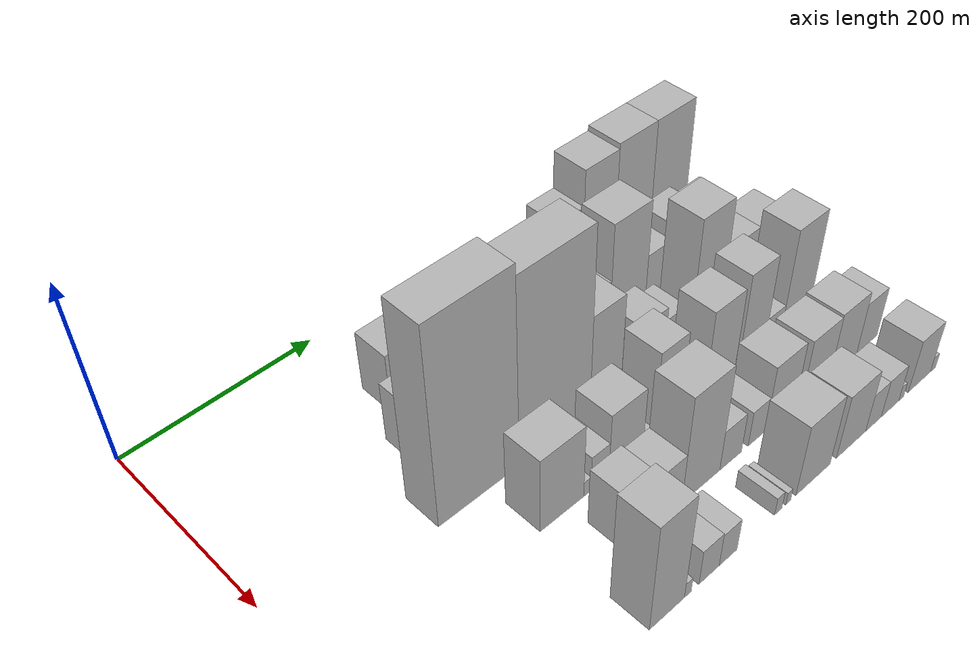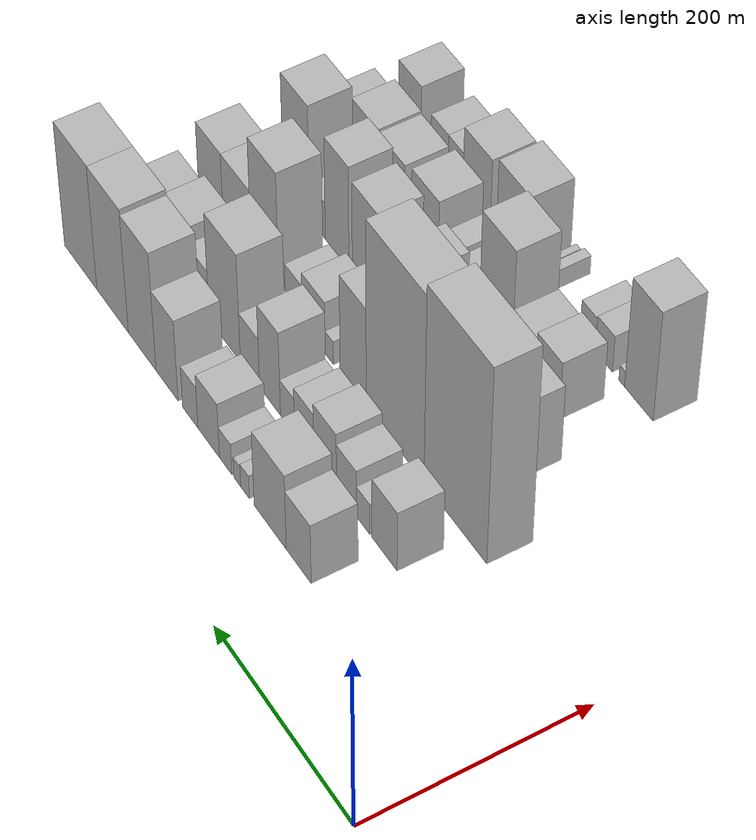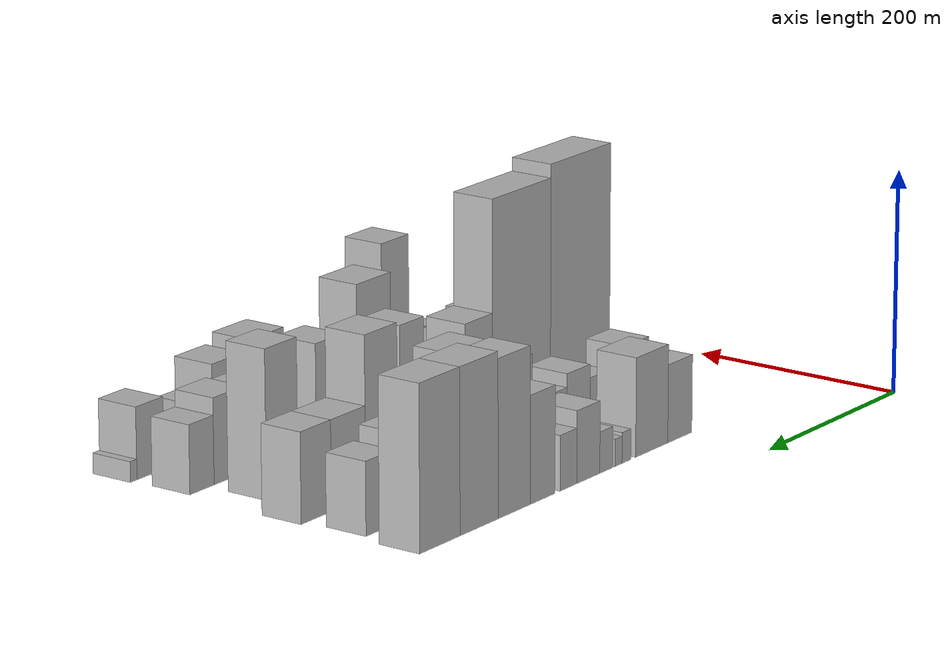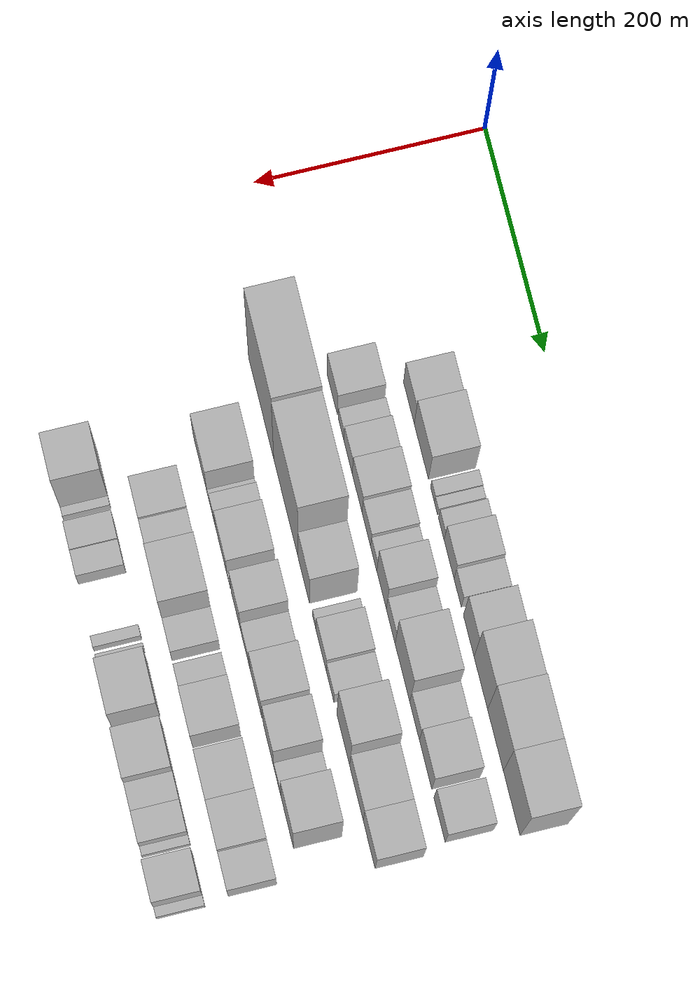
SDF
<sdf version="1.6">
 <world name="default">
  <model name="building_35">
   <static>1</static>
   <pose>100.0000 215.3011 0 0.000000 0.000000 0.000000</pose>
   <link name="link">
    <pose>0 0 34.50 0 0 0</pose>
    <collision name="collision"><geometry><box><size>40.0000 36.6681 69.0000</size></box></geometry></collision>
    <visual name="visual">
     <cast_shadows>0</cast_shadows>
     <geometry><box><size>40.0000 36.6681 69.0000</size></box></geometry>
     <material>
      <script>
       <uri>model://HANNAS_wall/materials/scripts</uri>
       <uri>model://HANNAS_wall/materials/textures</uri>
       <name>vrc/HANNAS_wall</name>
      </script>
     </material>
    </visual>
   </link>
  </model>
  <model name="building_36">
   <static>1</static>
   <pose>100.0000 257.6188 0 0.000000 0.000000 0.000000</pose>
   <link name="link">
    <pose>0 0 43.50 0 0 0</pose>
    <collision name="collision"><geometry><box><size>40.0000 47.9673 87.0000</size></box></geometry></collision>
    <visual name="visual">
     <cast_shadows>0</cast_shadows>
     <geometry><box><size>40.0000 47.9673 87.0000</size></box></geometry>
     <material>
      <script>
       <uri>model://HANNAS_wall/materials/scripts</uri>
       <uri>model://HANNAS_wall/materials/textures</uri>
       <name>vrc/HANNAS_wall</name>
      </script>
     </material>
    </visual>
   </link>
  </model>
  <model name="building_37">
   <static>1</static>
   <pose>100.0000 295.2699 0 0.000000 0.000000 0.000000</pose>
   <link name="link">
    <pose>0 0 13.50 0 0 0</pose>
    <collision name="collision"><geometry><box><size>40.0000 13.3350 27.0000</size></box></geometry></collision>
    <visual name="visual">
     <cast_shadows>0</cast_shadows>
     <geometry><box><size>40.0000 13.3350 27.0000</size></box></geometry>
     <material>
      <script>
       <uri>model://HANNAS_wall/materials/scripts</uri>
       <uri>model://HANNAS_wall/materials/textures</uri>
       <name>vrc/HANNAS_wall</name>
      </script>
     </material>
    </visual>
   </link>
  </model>
  <model name="building_38">
   <static>1</static>
   <pose>100.0000 307.1243 0 0.000000 0.000000 0.000000</pose>
   <link name="link">
    <pose>0 0 12.00 0 0 0</pose>
    <collision name="collision"><geometry><box><size>40.0000 10.3738 24.0000</size></box></geometry></collision>
    <visual name="visual">
     <cast_shadows>0</cast_shadows>
     <geometry><box><size>40.0000 10.3738 24.0000</size></box></geometry>
     <material>
      <script>
       <uri>model://HANNAS_wall/materials/scripts</uri>
       <uri>model://HANNAS_wall/materials/textures</uri>
       <name>vrc/HANNAS_wall</name>
      </script>
     </material>
    </visual>
   </link>
  </model>
  <model name="building_39">
   <static>1</static>
   <pose>100.0000 324.8237 0 0.000000 0.000000 0.000000</pose>
   <link name="link">
    <pose>0 0 18.00 0 0 0</pose>
    <collision name="collision"><geometry><box><size>40.0000 19.0250 36.0000</size></box></geometry></collision>
    <visual name="visual">
     <cast_shadows>0</cast_shadows>
     <geometry><box><size>40.0000 19.0250 36.0000</size></box></geometry>
     <material>
      <script>
       <uri>model://HANNAS_wall/materials/scripts</uri>
       <uri>model://HANNAS_wall/materials/textures</uri>
       <name>vrc/HANNAS_wall</name>
      </script>
     </material>
    </visual>
   </link>
  </model>
  <model name="building_40">
   <static>1</static>
   <pose>100.0000 350.9183 0 0.000000 0.000000 0.000000</pose>
   <link name="link">
    <pose>0 0 31.50 0 0 0</pose>
    <collision name="collision"><geometry><box><size>40.0000 33.1642 63.0000</size></box></geometry></collision>
    <visual name="visual">
     <cast_shadows>0</cast_shadows>
     <geometry><box><size>40.0000 33.1642 63.0000</size></box></geometry>
     <material>
      <script>
       <uri>model://HANNAS_wall/materials/scripts</uri>
       <uri>model://HANNAS_wall/materials/textures</uri>
       <name>vrc/HANNAS_wall</name>
      </script>
     </material>
    </visual>
   </link>
  </model>
  <model name="building_41">
   <static>1</static>
   <pose>100.0000 379.5309 0 0.000000 0.000000 0.000000</pose>
   <link name="link">
    <pose>0 0 24.00 0 0 0</pose>
    <collision name="collision"><geometry><box><size>40.0000 24.0609 48.0000</size></box></geometry></collision>
    <visual name="visual">
     <cast_shadows>0</cast_shadows>
     <geometry><box><size>40.0000 24.0609 48.0000</size></box></geometry>
     <material>
      <script>
       <uri>model://HANNAS_wall/materials/scripts</uri>
       <uri>model://HANNAS_wall/materials/textures</uri>
       <name>vrc/HANNAS_wall</name>
      </script>
     </material>
    </visual>
   </link>
  </model>
  <model name="building_42">
   <static>1</static>
   <pose>100.0000 416.1725 0 0.000000 0.000000 0.000000</pose>
   <link name="link">
    <pose>0 0 46.50 0 0 0</pose>
    <collision name="collision"><geometry><box><size>40.0000 35.2223 93.0000</size></box></geometry></collision>
    <visual name="visual">
     <cast_shadows>0</cast_shadows>
     <geometry><box><size>40.0000 35.2223 93.0000</size></box></geometry>
     <material>
      <script>
       <uri>model://HANNAS_wall/materials/scripts</uri>
       <uri>model://HANNAS_wall/materials/textures</uri>
       <name>vrc/HANNAS_wall</name>
      </script>
     </material>
    </visual>
   </link>
  </model>
  <model name="building_43">
   <static>1</static>
   <pose>100.0000 456.0497 0 0.000000 0.000000 0.000000</pose>
   <link name="link">
    <pose>0 0 67.50 0 0 0</pose>
    <collision name="collision"><geometry><box><size>40.0000 44.5321 135.0000</size></box></geometry></collision>
    <visual name="visual">
     <cast_shadows>0</cast_shadows>
     <geometry><box><size>40.0000 44.5321 135.0000</size></box></geometry>
     <material>
      <script>
       <uri>model://HANNAS_wall/materials/scripts</uri>
       <uri>model://HANNAS_wall/materials/textures</uri>
       <name>vrc/HANNAS_wall</name>
      </script>
     </material>
    </visual>
   </link>
  </model>
  <model name="building_44">
   <static>1</static>
   <pose>100.0000 504.1337 0 0.000000 0.000000 0.000000</pose>
   <link name="link">
    <pose>0 0 70.50 0 0 0</pose>
    <collision name="collision"><geometry><box><size>40.0000 51.6360 141.0000</size></box></geometry></collision>
    <visual name="visual">
     <cast_shadows>0</cast_shadows>
     <geometry><box><size>40.0000 51.6360 141.0000</size></box></geometry>
     <material>
      <script>
       <uri>model://HANNAS_wall/materials/scripts</uri>
       <uri>model://HANNAS_wall/materials/textures</uri>
       <name>vrc/HANNAS_wall</name>
      </script>
     </material>
    </visual>
   </link>
  </model>
  <model name="building_45">
   <static>1</static>
   <pose>100.0000 556.8525 0 0.000000 0.000000 0.000000</pose>
   <link name="link">
    <pose>0 0 70.50 0 0 0</pose>
    <collision name="collision"><geometry><box><size>40.0000 53.8015 141.0000</size></box></geometry></collision>
    <visual name="visual">
     <cast_shadows>0</cast_shadows>
     <geometry><box><size>40.0000 53.8015 141.0000</size></box></geometry>
     <material>
      <script>
       <uri>model://HANNAS_wall/materials/scripts</uri>
       <uri>model://HANNAS_wall/materials/textures</uri>
       <name>vrc/HANNAS_wall</name>
      </script>
     </material>
    </visual>
   </link>
  </model>
  <model name="building_87">
   <static>1</static>
   <pose>160.0000 192.6110 0 0.000000 0.000000 0.000000</pose>
   <link name="link">
    <pose>0 0 34.50 0 0 0</pose>
    <collision name="collision"><geometry><box><size>40.0000 36.2298 69.0000</size></box></geometry></collision>
    <visual name="visual">
     <cast_shadows>0</cast_shadows>
     <geometry><box><size>40.0000 36.2298 69.0000</size></box></geometry>
     <material>
      <script>
       <uri>model://HANNAS_wall/materials/scripts</uri>
       <uri>model://HANNAS_wall/materials/textures</uri>
       <name>vrc/HANNAS_wall</name>
      </script>
     </material>
    </visual>
   </link>
  </model>
  <model name="building_88">
   <static>1</static>
   <pose>160.0000 223.4874 0 0.000000 0.000000 0.000000</pose>
   <link name="link">
    <pose>0 0 18.00 0 0 0</pose>
    <collision name="collision"><geometry><box><size>40.0000 19.5230 36.0000</size></box></geometry></collision>
    <visual name="visual">
     <cast_shadows>0</cast_shadows>
     <geometry><box><size>40.0000 19.5230 36.0000</size></box></geometry>
     <material>
      <script>
       <uri>model://HANNAS_wall/materials/scripts</uri>
       <uri>model://HANNAS_wall/materials/textures</uri>
       <name>vrc/HANNAS_wall</name>
      </script>
     </material>
    </visual>
   </link>
  </model>
  <model name="building_89">
   <static>1</static>
   <pose>160.0000 247.8006 0 0.000000 0.000000 0.000000</pose>
   <link name="link">
    <pose>0 0 27.00 0 0 0</pose>
    <collision name="collision"><geometry><box><size>40.0000 29.1033 54.0000</size></box></geometry></collision>
    <visual name="visual">
     <cast_shadows>0</cast_shadows>
     <geometry><box><size>40.0000 29.1033 54.0000</size></box></geometry>
     <material>
      <script>
       <uri>model://HANNAS_wall/materials/scripts</uri>
       <uri>model://HANNAS_wall/materials/textures</uri>
       <name>vrc/HANNAS_wall</name>
      </script>
     </material>
    </visual>
   </link>
  </model>
  <model name="building_90">
   <static>1</static>
   <pose>160.0000 279.1996 0 0.000000 0.000000 0.000000</pose>
   <link name="link">
    <pose>0 0 33.00 0 0 0</pose>
    <collision name="collision"><geometry><box><size>40.0000 33.6947 66.0000</size></box></geometry></collision>
    <visual name="visual">
     <cast_shadows>0</cast_shadows>
     <geometry><box><size>40.0000 33.6947 66.0000</size></box></geometry>
     <material>
      <script>
       <uri>model://HANNAS_wall/materials/scripts</uri>
       <uri>model://HANNAS_wall/materials/textures</uri>
       <name>vrc/HANNAS_wall</name>
      </script>
     </material>
    </visual>
   </link>
  </model>
  <model name="building_91">
   <static>1</static>
   <pose>160.0000 310.6237 0 0.000000 0.000000 0.000000</pose>
   <link name="link">
    <pose>0 0 27.00 0 0 0</pose>
    <collision name="collision"><geometry><box><size>40.0000 29.1536 54.0000</size></box></geometry></collision>
    <visual name="visual">
     <cast_shadows>0</cast_shadows>
     <geometry><box><size>40.0000 29.1536 54.0000</size></box></geometry>
     <material>
      <script>
       <uri>model://HANNAS_wall/materials/scripts</uri>
       <uri>model://HANNAS_wall/materials/textures</uri>
       <name>vrc/HANNAS_wall</name>
      </script>
     </material>
    </visual>
   </link>
  </model>
  <model name="building_92">
   <static>1</static>
   <pose>160.0000 335.8627 0 0.000000 0.000000 0.000000</pose>
   <link name="link">
    <pose>0 0 21.00 0 0 0</pose>
    <collision name="collision"><geometry><box><size>40.0000 21.3245 42.0000</size></box></geometry></collision>
    <visual name="visual">
     <cast_shadows>0</cast_shadows>
     <geometry><box><size>40.0000 21.3245 42.0000</size></box></geometry>
     <material>
      <script>
       <uri>model://HANNAS_wall/materials/scripts</uri>
       <uri>model://HANNAS_wall/materials/textures</uri>
       <name>vrc/HANNAS_wall</name>
      </script>
     </material>
    </visual>
   </link>
  </model>
  <model name="building_93">
   <static>1</static>
   <pose>160.0000 362.5273 0 0.000000 0.000000 0.000000</pose>
   <link name="link">
    <pose>0 0 48.00 0 0 0</pose>
    <collision name="collision"><geometry><box><size>40.0000 32.0047 96.0000</size></box></geometry></collision>
    <visual name="visual">
     <cast_shadows>0</cast_shadows>
     <geometry><box><size>40.0000 32.0047 96.0000</size></box></geometry>
     <material>
      <script>
       <uri>model://HANNAS_wall/materials/scripts</uri>
       <uri>model://HANNAS_wall/materials/textures</uri>
       <name>vrc/HANNAS_wall</name>
      </script>
     </material>
    </visual>
   </link>
  </model>
  <model name="building_94">
   <static>1</static>
   <pose>160.0000 393.4113 0 0.000000 0.000000 0.000000</pose>
   <link name="link">
    <pose>0 0 28.50 0 0 0</pose>
    <collision name="collision"><geometry><box><size>40.0000 29.7634 57.0000</size></box></geometry></collision>
    <visual name="visual">
     <cast_shadows>0</cast_shadows>
     <geometry><box><size>40.0000 29.7634 57.0000</size></box></geometry>
     <material>
      <script>
       <uri>model://HANNAS_wall/materials/scripts</uri>
       <uri>model://HANNAS_wall/materials/textures</uri>
       <name>vrc/HANNAS_wall</name>
      </script>
     </material>
    </visual>
   </link>
  </model>
  <model name="building_95">
   <static>1</static>
   <pose>160.0000 432.8601 0 0.000000 0.000000 0.000000</pose>
   <link name="link">
    <pose>0 0 61.50 0 0 0</pose>
    <collision name="collision"><geometry><box><size>40.0000 49.1340 123.0000</size></box></geometry></collision>
    <visual name="visual">
     <cast_shadows>0</cast_shadows>
     <geometry><box><size>40.0000 49.1340 123.0000</size></box></geometry>
     <material>
      <script>
       <uri>model://HANNAS_wall/materials/scripts</uri>
       <uri>model://HANNAS_wall/materials/textures</uri>
       <name>vrc/HANNAS_wall</name>
      </script>
     </material>
    </visual>
   </link>
  </model>
  <model name="building_96">
   <static>1</static>
   <pose>160.0000 473.5806 0 0.000000 0.000000 0.000000</pose>
   <link name="link">
    <pose>0 0 28.50 0 0 0</pose>
    <collision name="collision"><geometry><box><size>40.0000 32.3071 57.0000</size></box></geometry></collision>
    <visual name="visual">
     <cast_shadows>0</cast_shadows>
     <geometry><box><size>40.0000 32.3071 57.0000</size></box></geometry>
     <material>
      <script>
       <uri>model://HANNAS_wall/materials/scripts</uri>
       <uri>model://HANNAS_wall/materials/textures</uri>
       <name>vrc/HANNAS_wall</name>
      </script>
     </material>
    </visual>
   </link>
  </model>
  <model name="building_97">
   <static>1</static>
   <pose>160.0000 510.1602 0 0.000000 0.000000 0.000000</pose>
   <link name="link">
    <pose>0 0 37.50 0 0 0</pose>
    <collision name="collision"><geometry><box><size>40.0000 40.8520 75.0000</size></box></geometry></collision>
    <visual name="visual">
     <cast_shadows>0</cast_shadows>
     <geometry><box><size>40.0000 40.8520 75.0000</size></box></geometry>
     <material>
      <script>
       <uri>model://HANNAS_wall/materials/scripts</uri>
       <uri>model://HANNAS_wall/materials/textures</uri>
       <name>vrc/HANNAS_wall</name>
      </script>
     </material>
    </visual>
   </link>
  </model>
  <model name="building_98">
   <static>1</static>
   <pose>160.0000 556.1377 0 0.000000 0.000000 0.000000</pose>
   <link name="link">
    <pose>0 0 31.50 0 0 0</pose>
    <collision name="collision"><geometry><box><size>40.0000 37.1031 63.0000</size></box></geometry></collision>
    <visual name="visual">
     <cast_shadows>0</cast_shadows>
     <geometry><box><size>40.0000 37.1031 63.0000</size></box></geometry>
     <material>
      <script>
       <uri>model://HANNAS_wall/materials/scripts</uri>
       <uri>model://HANNAS_wall/materials/textures</uri>
       <name>vrc/HANNAS_wall</name>
      </script>
     </material>
    </visual>
   </link>
  </model>
  <model name="building_144">
   <static>1</static>
   <pose>220.0000 190.7078 0 0.000000 0.000000 0.000000</pose>
   <link name="link">
    <pose>0 0 112.50 0 0 0</pose>
    <collision name="collision"><geometry><box><size>40.0000 89.0320 225.0000</size></box></geometry></collision>
    <visual name="visual">
     <cast_shadows>0</cast_shadows>
     <geometry><box><size>40.0000 89.0320 225.0000</size></box></geometry>
     <material>
      <script>
       <uri>model://HANNAS_wall/materials/scripts</uri>
       <uri>model://HANNAS_wall/materials/textures</uri>
       <name>vrc/HANNAS_wall</name>
      </script>
     </material>
    </visual>
   </link>
  </model>
  <model name="building_145">
   <static>1</static>
   <pose>220.0000 277.5758 0 0.000000 0.000000 0.000000</pose>
   <link name="link">
    <pose>0 0 106.50 0 0 0</pose>
    <collision name="collision"><geometry><box><size>40.0000 84.7039 213.0000</size></box></geometry></collision>
    <visual name="visual">
     <cast_shadows>0</cast_shadows>
     <geometry><box><size>40.0000 84.7039 213.0000</size></box></geometry>
     <material>
      <script>
       <uri>model://HANNAS_wall/materials/scripts</uri>
       <uri>model://HANNAS_wall/materials/textures</uri>
       <name>vrc/HANNAS_wall</name>
      </script>
     </material>
    </visual>
   </link>
  </model>
  <model name="building_146">
   <static>1</static>
   <pose>220.0000 339.4947 0 0.000000 0.000000 0.000000</pose>
   <link name="link">
    <pose>0 0 57.00 0 0 0</pose>
    <collision name="collision"><geometry><box><size>40.0000 39.1339 114.0000</size></box></geometry></collision>
    <visual name="visual">
     <cast_shadows>0</cast_shadows>
     <geometry><box><size>40.0000 39.1339 114.0000</size></box></geometry>
     <material>
      <script>
       <uri>model://HANNAS_wall/materials/scripts</uri>
       <uri>model://HANNAS_wall/materials/textures</uri>
       <name>vrc/HANNAS_wall</name>
      </script>
     </material>
    </visual>
   </link>
  </model>
  <model name="building_147">
   <static>1</static>
   <pose>220.0000 375.3607 0 0.000000 0.000000 0.000000</pose>
   <link name="link">
    <pose>0 0 13.50 0 0 0</pose>
    <collision name="collision"><geometry><box><size>40.0000 12.5982 27.0000</size></box></geometry></collision>
    <visual name="visual">
     <cast_shadows>0</cast_shadows>
     <geometry><box><size>40.0000 12.5982 27.0000</size></box></geometry>
     <material>
      <script>
       <uri>model://HANNAS_wall/materials/scripts</uri>
       <uri>model://HANNAS_wall/materials/textures</uri>
       <name>vrc/HANNAS_wall</name>
      </script>
     </material>
    </visual>
   </link>
  </model>
  <model name="building_148">
   <static>1</static>
   <pose>220.0000 399.1715 0 0.000000 0.000000 0.000000</pose>
   <link name="link">
    <pose>0 0 30.00 0 0 0</pose>
    <collision name="collision"><geometry><box><size>40.0000 35.0233 60.0000</size></box></geometry></collision>
    <visual name="visual">
     <cast_shadows>0</cast_shadows>
     <geometry><box><size>40.0000 35.0233 60.0000</size></box></geometry>
     <material>
      <script>
       <uri>model://HANNAS_wall/materials/scripts</uri>
       <uri>model://HANNAS_wall/materials/textures</uri>
       <name>vrc/HANNAS_wall</name>
      </script>
     </material>
    </visual>
   </link>
  </model>
  <model name="building_149">
   <static>1</static>
   <pose>220.0000 429.8828 0 0.000000 0.000000 0.000000</pose>
   <link name="link">
    <pose>0 0 22.50 0 0 0</pose>
    <collision name="collision"><geometry><box><size>40.0000 26.3994 45.0000</size></box></geometry></collision>
    <visual name="visual">
     <cast_shadows>0</cast_shadows>
     <geometry><box><size>40.0000 26.3994 45.0000</size></box></geometry>
     <material>
      <script>
       <uri>model://HANNAS_wall/materials/scripts</uri>
       <uri>model://HANNAS_wall/materials/textures</uri>
       <name>vrc/HANNAS_wall</name>
      </script>
     </material>
    </visual>
   </link>
  </model>
  <model name="building_150">
   <static>1</static>
   <pose>220.0000 474.7419 0 0.000000 0.000000 0.000000</pose>
   <link name="link">
    <pose>0 0 69.00 0 0 0</pose>
    <collision name="collision"><geometry><box><size>40.0000 43.3186 138.0000</size></box></geometry></collision>
    <visual name="visual">
     <cast_shadows>0</cast_shadows>
     <geometry><box><size>40.0000 43.3186 138.0000</size></box></geometry>
     <material>
      <script>
       <uri>model://HANNAS_wall/materials/scripts</uri>
       <uri>model://HANNAS_wall/materials/textures</uri>
       <name>vrc/HANNAS_wall</name>
      </script>
     </material>
    </visual>
   </link>
  </model>
  <model name="building_151">
   <static>1</static>
   <pose>220.0000 519.2101 0 0.000000 0.000000 0.000000</pose>
   <link name="link">
    <pose>0 0 39.00 0 0 0</pose>
    <collision name="collision"><geometry><box><size>40.0000 45.6178 78.0000</size></box></geometry></collision>
    <visual name="visual">
     <cast_shadows>0</cast_shadows>
     <geometry><box><size>40.0000 45.6178 78.0000</size></box></geometry>
     <material>
      <script>
       <uri>model://HANNAS_wall/materials/scripts</uri>
       <uri>model://HANNAS_wall/materials/textures</uri>
       <name>vrc/HANNAS_wall</name>
      </script>
     </material>
    </visual>
   </link>
  </model>
  <model name="building_152">
   <static>1</static>
   <pose>220.0000 561.8938 0 0.000000 0.000000 0.000000</pose>
   <link name="link">
    <pose>0 0 39.00 0 0 0</pose>
    <collision name="collision"><geometry><box><size>40.0000 39.7496 78.0000</size></box></geometry></collision>
    <visual name="visual">
     <cast_shadows>0</cast_shadows>
     <geometry><box><size>40.0000 39.7496 78.0000</size></box></geometry>
     <material>
      <script>
       <uri>model://HANNAS_wall/materials/scripts</uri>
       <uri>model://HANNAS_wall/materials/textures</uri>
       <name>vrc/HANNAS_wall</name>
      </script>
     </material>
    </visual>
   </link>
  </model>
  <model name="building_197">
   <static>1</static>
   <pose>280.0000 225.4956 0 0.000000 0.000000 0.000000</pose>
   <link name="link">
    <pose>0 0 43.50 0 0 0</pose>
    <collision name="collision"><geometry><box><size>40.0000 49.4577 87.0000</size></box></geometry></collision>
    <visual name="visual">
     <cast_shadows>0</cast_shadows>
     <geometry><box><size>40.0000 49.4577 87.0000</size></box></geometry>
     <material>
      <script>
       <uri>model://HANNAS_wall/materials/scripts</uri>
       <uri>model://HANNAS_wall/materials/textures</uri>
       <name>vrc/HANNAS_wall</name>
      </script>
     </material>
    </visual>
   </link>
  </model>
  <model name="building_198">
   <static>1</static>
   <pose>280.0000 254.4181 0 0.000000 0.000000 0.000000</pose>
   <link name="link">
    <pose>0 0 9.00 0 0 0</pose>
    <collision name="collision"><geometry><box><size>40.0000 8.3874 18.0000</size></box></geometry></collision>
    <visual name="visual">
     <cast_shadows>0</cast_shadows>
     <geometry><box><size>40.0000 8.3874 18.0000</size></box></geometry>
     <material>
      <script>
       <uri>model://HANNAS_wall/materials/scripts</uri>
       <uri>model://HANNAS_wall/materials/textures</uri>
       <name>vrc/HANNAS_wall</name>
      </script>
     </material>
    </visual>
   </link>
  </model>
  <model name="building_199">
   <static>1</static>
   <pose>280.0000 269.2435 0 0.000000 0.000000 0.000000</pose>
   <link name="link">
    <pose>0 0 21.00 0 0 0</pose>
    <collision name="collision"><geometry><box><size>40.0000 21.2634 42.0000</size></box></geometry></collision>
    <visual name="visual">
     <cast_shadows>0</cast_shadows>
     <geometry><box><size>40.0000 21.2634 42.0000</size></box></geometry>
     <material>
      <script>
       <uri>model://HANNAS_wall/materials/scripts</uri>
       <uri>model://HANNAS_wall/materials/textures</uri>
       <name>vrc/HANNAS_wall</name>
      </script>
     </material>
    </visual>
   </link>
  </model>
  <model name="building_200">
   <static>1</static>
   <pose>280.0000 300.8464 0 0.000000 0.000000 0.000000</pose>
   <link name="link">
    <pose>0 0 37.50 0 0 0</pose>
    <collision name="collision"><geometry><box><size>40.0000 41.9424 75.0000</size></box></geometry></collision>
    <visual name="visual">
     <cast_shadows>0</cast_shadows>
     <geometry><box><size>40.0000 41.9424 75.0000</size></box></geometry>
     <material>
      <script>
       <uri>model://HANNAS_wall/materials/scripts</uri>
       <uri>model://HANNAS_wall/materials/textures</uri>
       <name>vrc/HANNAS_wall</name>
      </script>
     </material>
    </visual>
   </link>
  </model>
  <model name="building_201">
   <static>1</static>
   <pose>280.0000 326.6216 0 0.000000 0.000000 0.000000</pose>
   <link name="link">
    <pose>0 0 10.50 0 0 0</pose>
    <collision name="collision"><geometry><box><size>40.0000 9.6080 21.0000</size></box></geometry></collision>
    <visual name="visual">
     <cast_shadows>0</cast_shadows>
     <geometry><box><size>40.0000 9.6080 21.0000</size></box></geometry>
     <material>
      <script>
       <uri>model://HANNAS_wall/materials/scripts</uri>
       <uri>model://HANNAS_wall/materials/textures</uri>
       <name>vrc/HANNAS_wall</name>
      </script>
     </material>
    </visual>
   </link>
  </model>
  <model name="building_202">
   <static>1</static>
   <pose>280.0000 352.5852 0 0.000000 0.000000 0.000000</pose>
   <link name="link">
    <pose>0 0 52.50 0 0 0</pose>
    <collision name="collision"><geometry><box><size>40.0000 34.3192 105.0000</size></box></geometry></collision>
    <visual name="visual">
     <cast_shadows>0</cast_shadows>
     <geometry><box><size>40.0000 34.3192 105.0000</size></box></geometry>
     <material>
      <script>
       <uri>model://HANNAS_wall/materials/scripts</uri>
       <uri>model://HANNAS_wall/materials/textures</uri>
       <name>vrc/HANNAS_wall</name>
      </script>
     </material>
    </visual>
   </link>
  </model>
  <model name="building_203">
   <static>1</static>
   <pose>280.0000 385.8009 0 0.000000 0.000000 0.000000</pose>
   <link name="link">
    <pose>0 0 27.00 0 0 0</pose>
    <collision name="collision"><geometry><box><size>40.0000 32.1122 54.0000</size></box></geometry></collision>
    <visual name="visual">
     <cast_shadows>0</cast_shadows>
     <geometry><box><size>40.0000 32.1122 54.0000</size></box></geometry>
     <material>
      <script>
       <uri>model://HANNAS_wall/materials/scripts</uri>
       <uri>model://HANNAS_wall/materials/textures</uri>
       <name>vrc/HANNAS_wall</name>
      </script>
     </material>
    </visual>
   </link>
  </model>
  <model name="building_204">
   <static>1</static>
   <pose>280.0000 422.0167 0 0.000000 0.000000 0.000000</pose>
   <link name="link">
    <pose>0 0 52.50 0 0 0</pose>
    <collision name="collision"><geometry><box><size>40.0000 40.3195 105.0000</size></box></geometry></collision>
    <visual name="visual">
     <cast_shadows>0</cast_shadows>
     <geometry><box><size>40.0000 40.3195 105.0000</size></box></geometry>
     <material>
      <script>
       <uri>model://HANNAS_wall/materials/scripts</uri>
       <uri>model://HANNAS_wall/materials/textures</uri>
       <name>vrc/HANNAS_wall</name>
      </script>
     </material>
    </visual>
   </link>
  </model>
  <model name="building_205">
   <static>1</static>
   <pose>280.0000 465.6377 0 0.000000 0.000000 0.000000</pose>
   <link name="link">
    <pose>0 0 58.50 0 0 0</pose>
    <collision name="collision"><geometry><box><size>40.0000 36.9226 117.0000</size></box></geometry></collision>
    <visual name="visual">
     <cast_shadows>0</cast_shadows>
     <geometry><box><size>40.0000 36.9226 117.0000</size></box></geometry>
     <material>
      <script>
       <uri>model://HANNAS_wall/materials/scripts</uri>
       <uri>model://HANNAS_wall/materials/textures</uri>
       <name>vrc/HANNAS_wall</name>
      </script>
     </material>
    </visual>
   </link>
  </model>
  <model name="building_206">
   <static>1</static>
   <pose>280.0000 496.5172 0 0.000000 0.000000 0.000000</pose>
   <link name="link">
    <pose>0 0 21.00 0 0 0</pose>
    <collision name="collision"><geometry><box><size>40.0000 24.8364 42.0000</size></box></geometry></collision>
    <visual name="visual">
     <cast_shadows>0</cast_shadows>
     <geometry><box><size>40.0000 24.8364 42.0000</size></box></geometry>
     <material>
      <script>
       <uri>model://HANNAS_wall/materials/scripts</uri>
       <uri>model://HANNAS_wall/materials/textures</uri>
       <name>vrc/HANNAS_wall</name>
      </script>
     </material>
    </visual>
   </link>
  </model>
  <model name="building_207">
   <static>1</static>
   <pose>280.0000 529.7742 0 0.000000 0.000000 0.000000</pose>
   <link name="link">
    <pose>0 0 64.50 0 0 0</pose>
    <collision name="collision"><geometry><box><size>40.0000 41.6775 129.0000</size></box></geometry></collision>
    <visual name="visual">
     <cast_shadows>0</cast_shadows>
     <geometry><box><size>40.0000 41.6775 129.0000</size></box></geometry>
     <material>
      <script>
       <uri>model://HANNAS_wall/materials/scripts</uri>
       <uri>model://HANNAS_wall/materials/textures</uri>
       <name>vrc/HANNAS_wall</name>
      </script>
     </material>
    </visual>
   </link>
  </model>
  <model name="building_253">
   <static>1</static>
   <pose>340.0000 251.9464 0 0.000000 0.000000 0.000000</pose>
   <link name="link">
    <pose>0 0 33.00 0 0 0</pose>
    <collision name="collision"><geometry><box><size>40.0000 35.1072 66.0000</size></box></geometry></collision>
    <visual name="visual">
     <cast_shadows>0</cast_shadows>
     <geometry><box><size>40.0000 35.1072 66.0000</size></box></geometry>
     <material>
      <script>
       <uri>model://HANNAS_wall/materials/scripts</uri>
       <uri>model://HANNAS_wall/materials/textures</uri>
       <name>vrc/HANNAS_wall</name>
      </script>
     </material>
    </visual>
   </link>
  </model>
  <model name="building_254">
   <static>1</static>
   <pose>340.0000 285.9244 0 0.000000 0.000000 0.000000</pose>
   <link name="link">
    <pose>0 0 30.00 0 0 0</pose>
    <collision name="collision"><geometry><box><size>40.0000 32.8487 60.0000</size></box></geometry></collision>
    <visual name="visual">
     <cast_shadows>0</cast_shadows>
     <geometry><box><size>40.0000 32.8487 60.0000</size></box></geometry>
     <material>
      <script>
       <uri>model://HANNAS_wall/materials/scripts</uri>
       <uri>model://HANNAS_wall/materials/textures</uri>
       <name>vrc/HANNAS_wall</name>
      </script>
     </material>
    </visual>
   </link>
  </model>
  <model name="building_255">
   <static>1</static>
   <pose>340.0000 326.2312 0 0.000000 0.000000 0.000000</pose>
   <link name="link">
    <pose>0 0 63.00 0 0 0</pose>
    <collision name="collision"><geometry><box><size>40.0000 47.7650 126.0000</size></box></geometry></collision>
    <visual name="visual">
     <cast_shadows>0</cast_shadows>
     <geometry><box><size>40.0000 47.7650 126.0000</size></box></geometry>
     <material>
      <script>
       <uri>model://HANNAS_wall/materials/scripts</uri>
       <uri>model://HANNAS_wall/materials/textures</uri>
       <name>vrc/HANNAS_wall</name>
      </script>
     </material>
    </visual>
   </link>
  </model>
  <model name="building_256">
   <static>1</static>
   <pose>340.0000 364.3178 0 0.000000 0.000000 0.000000</pose>
   <link name="link">
    <pose>0 0 24.00 0 0 0</pose>
    <collision name="collision"><geometry><box><size>40.0000 28.4082 48.0000</size></box></geometry></collision>
    <visual name="visual">
     <cast_shadows>0</cast_shadows>
     <geometry><box><size>40.0000 28.4082 48.0000</size></box></geometry>
     <material>
      <script>
       <uri>model://HANNAS_wall/materials/scripts</uri>
       <uri>model://HANNAS_wall/materials/textures</uri>
       <name>vrc/HANNAS_wall</name>
      </script>
     </material>
    </visual>
   </link>
  </model>
  <model name="building_257">
   <static>1</static>
   <pose>340.0000 399.3369 0 0.000000 0.000000 0.000000</pose>
   <link name="link">
    <pose>0 0 21.00 0 0 0</pose>
    <collision name="collision"><geometry><box><size>40.0000 23.6300 42.0000</size></box></geometry></collision>
    <visual name="visual">
     <cast_shadows>0</cast_shadows>
     <geometry><box><size>40.0000 23.6300 42.0000</size></box></geometry>
     <material>
      <script>
       <uri>model://HANNAS_wall/materials/scripts</uri>
       <uri>model://HANNAS_wall/materials/textures</uri>
       <name>vrc/HANNAS_wall</name>
      </script>
     </material>
    </visual>
   </link>
  </model>
  <model name="building_258">
   <static>1</static>
   <pose>340.0000 431.6374 0 0.000000 0.000000 0.000000</pose>
   <link name="link">
    <pose>0 0 39.00 0 0 0</pose>
    <collision name="collision"><geometry><box><size>40.0000 40.9709 78.0000</size></box></geometry></collision>
    <visual name="visual">
     <cast_shadows>0</cast_shadows>
     <geometry><box><size>40.0000 40.9709 78.0000</size></box></geometry>
     <material>
      <script>
       <uri>model://HANNAS_wall/materials/scripts</uri>
       <uri>model://HANNAS_wall/materials/textures</uri>
       <name>vrc/HANNAS_wall</name>
      </script>
     </material>
    </visual>
   </link>
  </model>
  <model name="building_259">
   <static>1</static>
   <pose>340.0000 482.7915 0 0.000000 0.000000 0.000000</pose>
   <link name="link">
    <pose>0 0 36.00 0 0 0</pose>
    <collision name="collision"><geometry><box><size>40.0000 41.3374 72.0000</size></box></geometry></collision>
    <visual name="visual">
     <cast_shadows>0</cast_shadows>
     <geometry><box><size>40.0000 41.3374 72.0000</size></box></geometry>
     <material>
      <script>
       <uri>model://HANNAS_wall/materials/scripts</uri>
       <uri>model://HANNAS_wall/materials/textures</uri>
       <name>vrc/HANNAS_wall</name>
      </script>
     </material>
    </visual>
   </link>
  </model>
  <model name="building_260">
   <static>1</static>
   <pose>340.0000 523.7398 0 0.000000 0.000000 0.000000</pose>
   <link name="link">
    <pose>0 0 37.50 0 0 0</pose>
    <collision name="collision"><geometry><box><size>40.0000 40.5592 75.0000</size></box></geometry></collision>
    <visual name="visual">
     <cast_shadows>0</cast_shadows>
     <geometry><box><size>40.0000 40.5592 75.0000</size></box></geometry>
     <material>
      <script>
       <uri>model://HANNAS_wall/materials/scripts</uri>
       <uri>model://HANNAS_wall/materials/textures</uri>
       <name>vrc/HANNAS_wall</name>
      </script>
     </material>
    </visual>
   </link>
  </model>
  <model name="building_261">
   <static>1</static>
   <pose>340.0000 559.7546 0 0.000000 0.000000 0.000000</pose>
   <link name="link">
    <pose>0 0 30.00 0 0 0</pose>
    <collision name="collision"><geometry><box><size>40.0000 31.4705 60.0000</size></box></geometry></collision>
    <visual name="visual">
     <cast_shadows>0</cast_shadows>
     <geometry><box><size>40.0000 31.4705 60.0000</size></box></geometry>
     <material>
      <script>
       <uri>model://HANNAS_wall/materials/scripts</uri>
       <uri>model://HANNAS_wall/materials/textures</uri>
       <name>vrc/HANNAS_wall</name>
      </script>
     </material>
    </visual>
   </link>
  </model>
  <model name="building_304">
   <static>1</static>
   <pose>400.0000 216.1903 0 0.000000 0.000000 0.000000</pose>
   <link name="link">
    <pose>0 0 63.00 0 0 0</pose>
    <collision name="collision"><geometry><box><size>40.0000 39.6392 126.0000</size></box></geometry></collision>
    <visual name="visual">
     <cast_shadows>0</cast_shadows>
     <geometry><box><size>40.0000 39.6392 126.0000</size></box></geometry>
     <material>
      <script>
       <uri>model://HANNAS_wall/materials/scripts</uri>
       <uri>model://HANNAS_wall/materials/textures</uri>
       <name>vrc/HANNAS_wall</name>
      </script>
     </material>
    </visual>
   </link>
  </model>
  <model name="building_305">
   <static>1</static>
   <pose>400.0000 239.9536 0 0.000000 0.000000 0.000000</pose>
   <link name="link">
    <pose>0 0 9.00 0 0 0</pose>
    <collision name="collision"><geometry><box><size>40.0000 7.8875 18.0000</size></box></geometry></collision>
    <visual name="visual">
     <cast_shadows>0</cast_shadows>
     <geometry><box><size>40.0000 7.8875 18.0000</size></box></geometry>
     <material>
      <script>
       <uri>model://HANNAS_wall/materials/scripts</uri>
       <uri>model://HANNAS_wall/materials/textures</uri>
       <name>vrc/HANNAS_wall</name>
      </script>
     </material>
    </visual>
   </link>
  </model>
  <model name="building_306">
   <static>1</static>
   <pose>400.0000 264.9086 0 0.000000 0.000000 0.000000</pose>
   <link name="link">
    <pose>0 0 21.00 0 0 0</pose>
    <collision name="collision"><geometry><box><size>40.0000 24.0225 42.0000</size></box></geometry></collision>
    <visual name="visual">
     <cast_shadows>0</cast_shadows>
     <geometry><box><size>40.0000 24.0225 42.0000</size></box></geometry>
     <material>
      <script>
       <uri>model://HANNAS_wall/materials/scripts</uri>
       <uri>model://HANNAS_wall/materials/textures</uri>
       <name>vrc/HANNAS_wall</name>
      </script>
     </material>
    </visual>
   </link>
  </model>
  <model name="building_307">
   <static>1</static>
   <pose>400.0000 287.8212 0 0.000000 0.000000 0.000000</pose>
   <link name="link">
    <pose>0 0 19.50 0 0 0</pose>
    <collision name="collision"><geometry><box><size>40.0000 21.8027 39.0000</size></box></geometry></collision>
    <visual name="visual">
     <cast_shadows>0</cast_shadows>
     <geometry><box><size>40.0000 21.8027 39.0000</size></box></geometry>
     <material>
      <script>
       <uri>model://HANNAS_wall/materials/scripts</uri>
       <uri>model://HANNAS_wall/materials/textures</uri>
       <name>vrc/HANNAS_wall</name>
      </script>
     </material>
    </visual>
   </link>
  </model>
  <model name="building_308">
   <static>1</static>
   <pose>400.0000 350.9795 0 0.000000 0.000000 0.000000</pose>
   <link name="link">
    <pose>0 0 10.50 0 0 0</pose>
    <collision name="collision"><geometry><box><size>40.0000 9.5046 21.0000</size></box></geometry></collision>
    <visual name="visual">
     <cast_shadows>0</cast_shadows>
     <geometry><box><size>40.0000 9.5046 21.0000</size></box></geometry>
     <material>
      <script>
       <uri>model://HANNAS_wall/materials/scripts</uri>
       <uri>model://HANNAS_wall/materials/textures</uri>
       <name>vrc/HANNAS_wall</name>
      </script>
     </material>
    </visual>
   </link>
  </model>
  <model name="building_309">
   <static>1</static>
   <pose>400.0000 364.0011 0 0.000000 0.000000 0.000000</pose>
   <link name="link">
    <pose>0 0 7.50 0 0 0</pose>
    <collision name="collision"><geometry><box><size>40.0000 6.5384 15.0000</size></box></geometry></collision>
    <visual name="visual">
     <cast_shadows>0</cast_shadows>
     <geometry><box><size>40.0000 6.5384 15.0000</size></box></geometry>
     <material>
      <script>
       <uri>model://HANNAS_wall/materials/scripts</uri>
       <uri>model://HANNAS_wall/materials/textures</uri>
       <name>vrc/HANNAS_wall</name>
      </script>
     </material>
    </visual>
   </link>
  </model>
  <model name="building_310">
   <static>1</static>
   <pose>400.0000 397.5344 0 0.000000 0.000000 0.000000</pose>
   <link name="link">
    <pose>0 0 42.00 0 0 0</pose>
    <collision name="collision"><geometry><box><size>40.0000 46.5284 84.0000</size></box></geometry></collision>
    <visual name="visual">
     <cast_shadows>0</cast_shadows>
     <geometry><box><size>40.0000 46.5284 84.0000</size></box></geometry>
     <material>
      <script>
       <uri>model://HANNAS_wall/materials/scripts</uri>
       <uri>model://HANNAS_wall/materials/textures</uri>
       <name>vrc/HANNAS_wall</name>
      </script>
     </material>
    </visual>
   </link>
  </model>
  <model name="building_311">
   <static>1</static>
   <pose>400.0000 450.6153 0 0.000000 0.000000 0.000000</pose>
   <link name="link">
    <pose>0 0 37.50 0 0 0</pose>
    <collision name="collision"><geometry><box><size>40.0000 41.6334 75.0000</size></box></geometry></collision>
    <visual name="visual">
     <cast_shadows>0</cast_shadows>
     <geometry><box><size>40.0000 41.6334 75.0000</size></box></geometry>
     <material>
      <script>
       <uri>model://HANNAS_wall/materials/scripts</uri>
       <uri>model://HANNAS_wall/materials/textures</uri>
       <name>vrc/HANNAS_wall</name>
      </script>
     </material>
    </visual>
   </link>
  </model>
  <model name="building_312">
   <static>1</static>
   <pose>400.0000 482.9939 0 0.000000 0.000000 0.000000</pose>
   <link name="link">
    <pose>0 0 22.50 0 0 0</pose>
    <collision name="collision"><geometry><box><size>40.0000 23.1240 45.0000</size></box></geometry></collision>
    <visual name="visual">
     <cast_shadows>0</cast_shadows>
     <geometry><box><size>40.0000 23.1240 45.0000</size></box></geometry>
     <material>
      <script>
       <uri>model://HANNAS_wall/materials/scripts</uri>
       <uri>model://HANNAS_wall/materials/textures</uri>
       <name>vrc/HANNAS_wall</name>
      </script>
     </material>
    </visual>
   </link>
  </model>
  <model name="building_313">
   <static>1</static>
   <pose>400.0000 507.8043 0 0.000000 0.000000 0.000000</pose>
   <link name="link">
    <pose>0 0 22.50 0 0 0</pose>
    <collision name="collision"><geometry><box><size>40.0000 26.4968 45.0000</size></box></geometry></collision>
    <visual name="visual">
     <cast_shadows>0</cast_shadows>
     <geometry><box><size>40.0000 26.4968 45.0000</size></box></geometry>
     <material>
      <script>
       <uri>model://HANNAS_wall/materials/scripts</uri>
       <uri>model://HANNAS_wall/materials/textures</uri>
       <name>vrc/HANNAS_wall</name>
      </script>
     </material>
    </visual>
   </link>
  </model>
  <model name="building_314">
   <static>1</static>
   <pose>400.0000 524.9414 0 0.000000 0.000000 0.000000</pose>
   <link name="link">
    <pose>0 0 9.00 0 0 0</pose>
    <collision name="collision"><geometry><box><size>40.0000 7.7774 18.0000</size></box></geometry></collision>
    <visual name="visual">
     <cast_shadows>0</cast_shadows>
     <geometry><box><size>40.0000 7.7774 18.0000</size></box></geometry>
     <material>
      <script>
       <uri>model://HANNAS_wall/materials/scripts</uri>
       <uri>model://HANNAS_wall/materials/textures</uri>
       <name>vrc/HANNAS_wall</name>
      </script>
     </material>
    </visual>
   </link>
  </model>
  <model name="building_315">
   <static>1</static>
   <pose>400.0000 553.3213 0 0.000000 0.000000 0.000000</pose>
   <link name="link">
    <pose>0 0 31.50 0 0 0</pose>
    <collision name="collision"><geometry><box><size>40.0000 34.9825 63.0000</size></box></geometry></collision>
    <visual name="visual">
     <cast_shadows>0</cast_shadows>
     <geometry><box><size>40.0000 34.9825 63.0000</size></box></geometry>
     <material>
      <script>
       <uri>model://HANNAS_wall/materials/scripts</uri>
       <uri>model://HANNAS_wall/materials/textures</uri>
       <name>vrc/HANNAS_wall</name>
      </script>
     </material>
    </visual>
   </link>
  </model>
  <model name="building_316">
   <static>1</static>
   <pose>400.0000 575.0845 0 0.000000 0.000000 0.000000</pose>
   <link name="link">
    <pose>0 0 9.00 0 0 0</pose>
    <collision name="collision"><geometry><box><size>40.0000 8.5438 18.0000</size></box></geometry></collision>
    <visual name="visual">
     <cast_shadows>0</cast_shadows>
     <geometry><box><size>40.0000 8.5438 18.0000</size></box></geometry>
     <material>
      <script>
       <uri>model://HANNAS_wall/materials/scripts</uri>
       <uri>model://HANNAS_wall/materials/textures</uri>
       <name>vrc/HANNAS_wall</name>
      </script>
     </material>
    </visual>
   </link>
  </model>
 </world>
</sdf>
